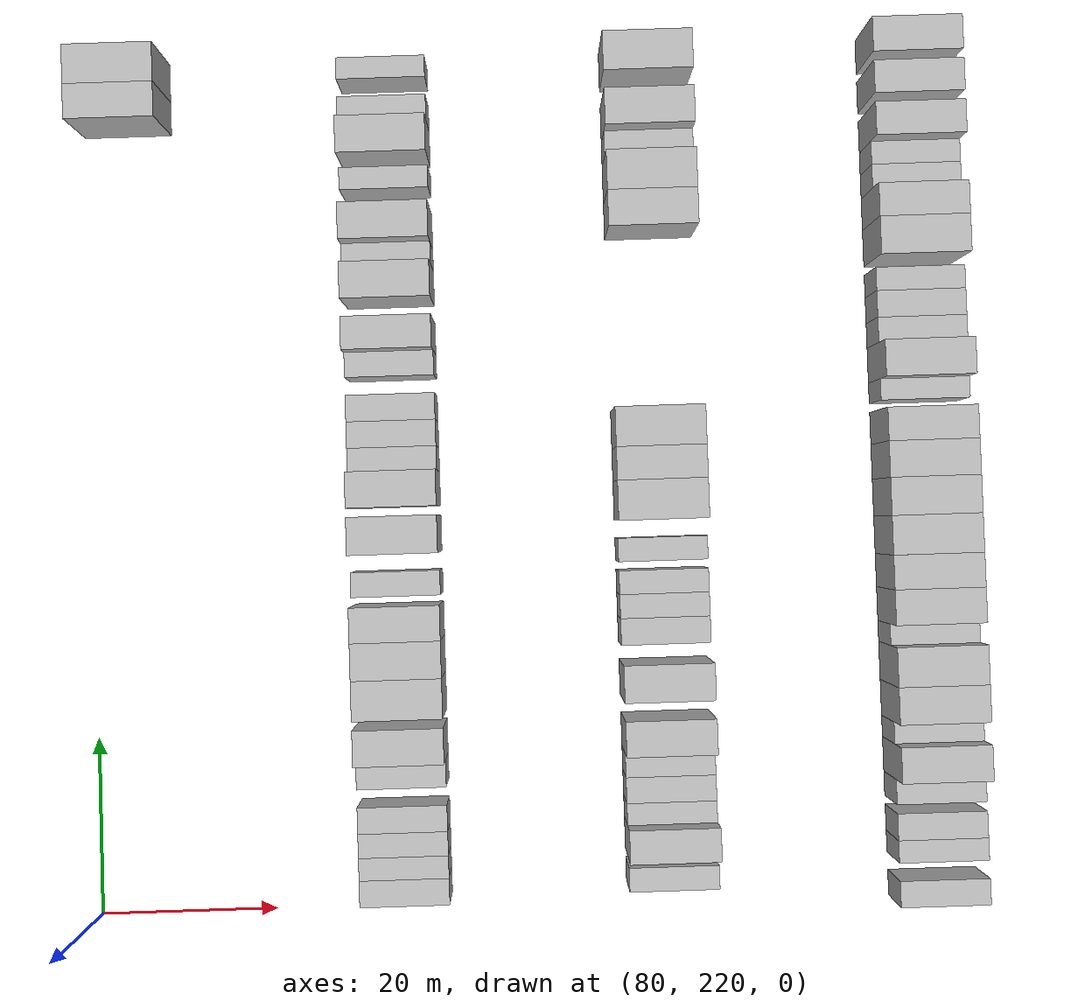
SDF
<sdf version="1.6">
 <world name="default">
  <model name="building_641">
   <static>1</static>
   <pose>85.0000 311.5146 0 0.000000 0.000000 0.000000</pose>
   <link name="link">
    <pose>0 0 4.50 0 0 0</pose>
    <collision name="collision"><geometry><box><size>10.0000 3.9091 9.0000</size></box></geometry></collision>
    <visual name="visual">
     <cast_shadows>0</cast_shadows>
     <geometry><box><size>10.0000 3.9091 9.0000</size></box></geometry>
     <material>
      <script>
       <uri>model://HANNAS_wall/materials/scripts</uri>
       <uri>model://HANNAS_wall/materials/textures</uri>
       <name>vrc/HANNAS_wall</name>
      </script>
     </material>
    </visual>
   </link>
  </model>
  <model name="building_642">
   <static>1</static>
   <pose>85.0000 315.6790 0 0.000000 0.000000 0.000000</pose>
   <link name="link">
    <pose>0 0 4.50 0 0 0</pose>
    <collision name="collision"><geometry><box><size>10.0000 4.4197 9.0000</size></box></geometry></collision>
    <visual name="visual">
     <cast_shadows>0</cast_shadows>
     <geometry><box><size>10.0000 4.4197 9.0000</size></box></geometry>
     <material>
      <script>
       <uri>model://HANNAS_wall/materials/scripts</uri>
       <uri>model://HANNAS_wall/materials/textures</uri>
       <name>vrc/HANNAS_wall</name>
      </script>
     </material>
    </visual>
   </link>
  </model>
  <model name="building_846">
   <static>1</static>
   <pose>115.0000 222.6279 0 0.000000 0.000000 0.000000</pose>
   <link name="link">
    <pose>0 0 3.00 0 0 0</pose>
    <collision name="collision"><geometry><box><size>10.0000 2.9274 6.0000</size></box></geometry></collision>
    <visual name="visual">
     <cast_shadows>0</cast_shadows>
     <geometry><box><size>10.0000 2.9274 6.0000</size></box></geometry>
     <material>
      <script>
       <uri>model://HANNAS_wall/materials/scripts</uri>
       <uri>model://HANNAS_wall/materials/textures</uri>
       <name>vrc/HANNAS_wall</name>
      </script>
     </material>
    </visual>
   </link>
  </model>
  <model name="building_847">
   <static>1</static>
   <pose>115.0000 225.3380 0 0.000000 0.000000 0.000000</pose>
   <link name="link">
    <pose>0 0 3.00 0 0 0</pose>
    <collision name="collision"><geometry><box><size>10.0000 2.4930 6.0000</size></box></geometry></collision>
    <visual name="visual">
     <cast_shadows>0</cast_shadows>
     <geometry><box><size>10.0000 2.4930 6.0000</size></box></geometry>
     <material>
      <script>
       <uri>model://HANNAS_wall/materials/scripts</uri>
       <uri>model://HANNAS_wall/materials/textures</uri>
       <name>vrc/HANNAS_wall</name>
      </script>
     </material>
    </visual>
   </link>
  </model>
  <model name="building_848">
   <static>1</static>
   <pose>115.0000 227.9159 0 0.000000 0.000000 0.000000</pose>
   <link name="link">
    <pose>0 0 3.00 0 0 0</pose>
    <collision name="collision"><geometry><box><size>10.0000 2.6627 6.0000</size></box></geometry></collision>
    <visual name="visual">
     <cast_shadows>0</cast_shadows>
     <geometry><box><size>10.0000 2.6627 6.0000</size></box></geometry>
     <material>
      <script>
       <uri>model://HANNAS_wall/materials/scripts</uri>
       <uri>model://HANNAS_wall/materials/textures</uri>
       <name>vrc/HANNAS_wall</name>
      </script>
     </material>
    </visual>
   </link>
  </model>
  <model name="building_849">
   <static>1</static>
   <pose>115.0000 230.7033 0 0.000000 0.000000 0.000000</pose>
   <link name="link">
    <pose>0 0 3.00 0 0 0</pose>
    <collision name="collision"><geometry><box><size>10.0000 2.9122 6.0000</size></box></geometry></collision>
    <visual name="visual">
     <cast_shadows>0</cast_shadows>
     <geometry><box><size>10.0000 2.9122 6.0000</size></box></geometry>
     <material>
      <script>
       <uri>model://HANNAS_wall/materials/scripts</uri>
       <uri>model://HANNAS_wall/materials/textures</uri>
       <name>vrc/HANNAS_wall</name>
      </script>
     </material>
    </visual>
   </link>
  </model>
  <model name="building_850">
   <static>1</static>
   <pose>115.0000 235.6266 0 0.000000 0.000000 0.000000</pose>
   <link name="link">
    <pose>0 0 3.00 0 0 0</pose>
    <collision name="collision"><geometry><box><size>10.0000 2.9344 6.0000</size></box></geometry></collision>
    <visual name="visual">
     <cast_shadows>0</cast_shadows>
     <geometry><box><size>10.0000 2.9344 6.0000</size></box></geometry>
     <material>
      <script>
       <uri>model://HANNAS_wall/materials/scripts</uri>
       <uri>model://HANNAS_wall/materials/textures</uri>
       <name>vrc/HANNAS_wall</name>
      </script>
     </material>
    </visual>
   </link>
  </model>
  <model name="building_851">
   <static>1</static>
   <pose>115.0000 239.0777 0 0.000000 0.000000 0.000000</pose>
   <link name="link">
    <pose>0 0 4.50 0 0 0</pose>
    <collision name="collision"><geometry><box><size>10.0000 3.9678 9.0000</size></box></geometry></collision>
    <visual name="visual">
     <cast_shadows>0</cast_shadows>
     <geometry><box><size>10.0000 3.9678 9.0000</size></box></geometry>
     <material>
      <script>
       <uri>model://HANNAS_wall/materials/scripts</uri>
       <uri>model://HANNAS_wall/materials/textures</uri>
       <name>vrc/HANNAS_wall</name>
      </script>
     </material>
    </visual>
   </link>
  </model>
  <model name="building_852">
   <static>1</static>
   <pose>115.0000 244.2660 0 0.000000 0.000000 0.000000</pose>
   <link name="link">
    <pose>0 0 4.50 0 0 0</pose>
    <collision name="collision"><geometry><box><size>10.0000 4.4089 9.0000</size></box></geometry></collision>
    <visual name="visual">
     <cast_shadows>0</cast_shadows>
     <geometry><box><size>10.0000 4.4089 9.0000</size></box></geometry>
     <material>
      <script>
       <uri>model://HANNAS_wall/materials/scripts</uri>
       <uri>model://HANNAS_wall/materials/textures</uri>
       <name>vrc/HANNAS_wall</name>
      </script>
     </material>
    </visual>
   </link>
  </model>
  <model name="building_853">
   <static>1</static>
   <pose>115.0000 248.5259 0 0.000000 0.000000 0.000000</pose>
   <link name="link">
    <pose>0 0 4.50 0 0 0</pose>
    <collision name="collision"><geometry><box><size>10.0000 4.1110 9.0000</size></box></geometry></collision>
    <visual name="visual">
     <cast_shadows>0</cast_shadows>
     <geometry><box><size>10.0000 4.1110 9.0000</size></box></geometry>
     <material>
      <script>
       <uri>model://HANNAS_wall/materials/scripts</uri>
       <uri>model://HANNAS_wall/materials/textures</uri>
       <name>vrc/HANNAS_wall</name>
      </script>
     </material>
    </visual>
   </link>
  </model>
  <model name="building_854">
   <static>1</static>
   <pose>115.0000 252.5371 0 0.000000 0.000000 0.000000</pose>
   <link name="link">
    <pose>0 0 4.50 0 0 0</pose>
    <collision name="collision"><geometry><box><size>10.0000 3.9114 9.0000</size></box></geometry></collision>
    <visual name="visual">
     <cast_shadows>0</cast_shadows>
     <geometry><box><size>10.0000 3.9114 9.0000</size></box></geometry>
     <material>
      <script>
       <uri>model://HANNAS_wall/materials/scripts</uri>
       <uri>model://HANNAS_wall/materials/textures</uri>
       <name>vrc/HANNAS_wall</name>
      </script>
     </material>
    </visual>
   </link>
  </model>
  <model name="building_855">
   <static>1</static>
   <pose>115.0000 256.8716 0 0.000000 0.000000 0.000000</pose>
   <link name="link">
    <pose>0 0 3.00 0 0 0</pose>
    <collision name="collision"><geometry><box><size>10.0000 2.7575 6.0000</size></box></geometry></collision>
    <visual name="visual">
     <cast_shadows>0</cast_shadows>
     <geometry><box><size>10.0000 2.7575 6.0000</size></box></geometry>
     <material>
      <script>
       <uri>model://HANNAS_wall/materials/scripts</uri>
       <uri>model://HANNAS_wall/materials/textures</uri>
       <name>vrc/HANNAS_wall</name>
      </script>
     </material>
    </visual>
   </link>
  </model>
  <model name="building_856">
   <static>1</static>
   <pose>115.0000 262.3448 0 0.000000 0.000000 0.000000</pose>
   <link name="link">
    <pose>0 0 4.50 0 0 0</pose>
    <collision name="collision"><geometry><box><size>10.0000 4.1890 9.0000</size></box></geometry></collision>
    <visual name="visual">
     <cast_shadows>0</cast_shadows>
     <geometry><box><size>10.0000 4.1890 9.0000</size></box></geometry>
     <material>
      <script>
       <uri>model://HANNAS_wall/materials/scripts</uri>
       <uri>model://HANNAS_wall/materials/textures</uri>
       <name>vrc/HANNAS_wall</name>
      </script>
     </material>
    </visual>
   </link>
  </model>
  <model name="building_857">
   <static>1</static>
   <pose>115.0000 267.4469 0 0.000000 0.000000 0.000000</pose>
   <link name="link">
    <pose>0 0 4.50 0 0 0</pose>
    <collision name="collision"><geometry><box><size>10.0000 4.0153 9.0000</size></box></geometry></collision>
    <visual name="visual">
     <cast_shadows>0</cast_shadows>
     <geometry><box><size>10.0000 4.0153 9.0000</size></box></geometry>
     <material>
      <script>
       <uri>model://HANNAS_wall/materials/scripts</uri>
       <uri>model://HANNAS_wall/materials/textures</uri>
       <name>vrc/HANNAS_wall</name>
      </script>
     </material>
    </visual>
   </link>
  </model>
  <model name="building_858">
   <static>1</static>
   <pose>115.0000 270.8145 0 0.000000 0.000000 0.000000</pose>
   <link name="link">
    <pose>0 0 3.00 0 0 0</pose>
    <collision name="collision"><geometry><box><size>10.0000 2.7198 6.0000</size></box></geometry></collision>
    <visual name="visual">
     <cast_shadows>0</cast_shadows>
     <geometry><box><size>10.0000 2.7198 6.0000</size></box></geometry>
     <material>
      <script>
       <uri>model://HANNAS_wall/materials/scripts</uri>
       <uri>model://HANNAS_wall/materials/textures</uri>
       <name>vrc/HANNAS_wall</name>
      </script>
     </material>
    </visual>
   </link>
  </model>
  <model name="building_859">
   <static>1</static>
   <pose>115.0000 273.6566 0 0.000000 0.000000 0.000000</pose>
   <link name="link">
    <pose>0 0 3.00 0 0 0</pose>
    <collision name="collision"><geometry><box><size>10.0000 2.9644 6.0000</size></box></geometry></collision>
    <visual name="visual">
     <cast_shadows>0</cast_shadows>
     <geometry><box><size>10.0000 2.9644 6.0000</size></box></geometry>
     <material>
      <script>
       <uri>model://HANNAS_wall/materials/scripts</uri>
       <uri>model://HANNAS_wall/materials/textures</uri>
       <name>vrc/HANNAS_wall</name>
      </script>
     </material>
    </visual>
   </link>
  </model>
  <model name="building_860">
   <static>1</static>
   <pose>115.0000 276.6313 0 0.000000 0.000000 0.000000</pose>
   <link name="link">
    <pose>0 0 3.00 0 0 0</pose>
    <collision name="collision"><geometry><box><size>10.0000 2.9850 6.0000</size></box></geometry></collision>
    <visual name="visual">
     <cast_shadows>0</cast_shadows>
     <geometry><box><size>10.0000 2.9850 6.0000</size></box></geometry>
     <material>
      <script>
       <uri>model://HANNAS_wall/materials/scripts</uri>
       <uri>model://HANNAS_wall/materials/textures</uri>
       <name>vrc/HANNAS_wall</name>
      </script>
     </material>
    </visual>
   </link>
  </model>
  <model name="building_861">
   <static>1</static>
   <pose>115.0000 281.5331 0 0.000000 0.000000 0.000000</pose>
   <link name="link">
    <pose>0 0 3.00 0 0 0</pose>
    <collision name="collision"><geometry><box><size>10.0000 2.8186 6.0000</size></box></geometry></collision>
    <visual name="visual">
     <cast_shadows>0</cast_shadows>
     <geometry><box><size>10.0000 2.8186 6.0000</size></box></geometry>
     <material>
      <script>
       <uri>model://HANNAS_wall/materials/scripts</uri>
       <uri>model://HANNAS_wall/materials/textures</uri>
       <name>vrc/HANNAS_wall</name>
      </script>
     </material>
    </visual>
   </link>
  </model>
  <model name="building_862">
   <static>1</static>
   <pose>115.0000 284.7804 0 0.000000 0.000000 0.000000</pose>
   <link name="link">
    <pose>0 0 4.50 0 0 0</pose>
    <collision name="collision"><geometry><box><size>10.0000 3.6760 9.0000</size></box></geometry></collision>
    <visual name="visual">
     <cast_shadows>0</cast_shadows>
     <geometry><box><size>10.0000 3.6760 9.0000</size></box></geometry>
     <material>
      <script>
       <uri>model://HANNAS_wall/materials/scripts</uri>
       <uri>model://HANNAS_wall/materials/textures</uri>
       <name>vrc/HANNAS_wall</name>
      </script>
     </material>
    </visual>
   </link>
  </model>
  <model name="building_863">
   <static>1</static>
   <pose>115.0000 290.6549 0 0.000000 0.000000 0.000000</pose>
   <link name="link">
    <pose>0 0 4.50 0 0 0</pose>
    <collision name="collision"><geometry><box><size>10.0000 4.0729 9.0000</size></box></geometry></collision>
    <visual name="visual">
     <cast_shadows>0</cast_shadows>
     <geometry><box><size>10.0000 4.0729 9.0000</size></box></geometry>
     <material>
      <script>
       <uri>model://HANNAS_wall/materials/scripts</uri>
       <uri>model://HANNAS_wall/materials/textures</uri>
       <name>vrc/HANNAS_wall</name>
      </script>
     </material>
    </visual>
   </link>
  </model>
  <model name="building_864">
   <static>1</static>
   <pose>115.0000 293.9522 0 0.000000 0.000000 0.000000</pose>
   <link name="link">
    <pose>0 0 3.00 0 0 0</pose>
    <collision name="collision"><geometry><box><size>10.0000 2.5218 6.0000</size></box></geometry></collision>
    <visual name="visual">
     <cast_shadows>0</cast_shadows>
     <geometry><box><size>10.0000 2.5218 6.0000</size></box></geometry>
     <material>
      <script>
       <uri>model://HANNAS_wall/materials/scripts</uri>
       <uri>model://HANNAS_wall/materials/textures</uri>
       <name>vrc/HANNAS_wall</name>
      </script>
     </material>
    </visual>
   </link>
  </model>
  <model name="building_865">
   <static>1</static>
   <pose>115.0000 297.2625 0 0.000000 0.000000 0.000000</pose>
   <link name="link">
    <pose>0 0 4.50 0 0 0</pose>
    <collision name="collision"><geometry><box><size>10.0000 4.0987 9.0000</size></box></geometry></collision>
    <visual name="visual">
     <cast_shadows>0</cast_shadows>
     <geometry><box><size>10.0000 4.0987 9.0000</size></box></geometry>
     <material>
      <script>
       <uri>model://HANNAS_wall/materials/scripts</uri>
       <uri>model://HANNAS_wall/materials/textures</uri>
       <name>vrc/HANNAS_wall</name>
      </script>
     </material>
    </visual>
   </link>
  </model>
  <model name="building_866">
   <static>1</static>
   <pose>115.0000 302.5664 0 0.000000 0.000000 0.000000</pose>
   <link name="link">
    <pose>0 0 3.00 0 0 0</pose>
    <collision name="collision"><geometry><box><size>10.0000 2.5090 6.0000</size></box></geometry></collision>
    <visual name="visual">
     <cast_shadows>0</cast_shadows>
     <geometry><box><size>10.0000 2.5090 6.0000</size></box></geometry>
     <material>
      <script>
       <uri>model://HANNAS_wall/materials/scripts</uri>
       <uri>model://HANNAS_wall/materials/textures</uri>
       <name>vrc/HANNAS_wall</name>
      </script>
     </material>
    </visual>
   </link>
  </model>
  <model name="building_867">
   <static>1</static>
   <pose>115.0000 306.8798 0 0.000000 0.000000 0.000000</pose>
   <link name="link">
    <pose>0 0 4.50 0 0 0</pose>
    <collision name="collision"><geometry><box><size>10.0000 4.1178 9.0000</size></box></geometry></collision>
    <visual name="visual">
     <cast_shadows>0</cast_shadows>
     <geometry><box><size>10.0000 4.1178 9.0000</size></box></geometry>
     <material>
      <script>
       <uri>model://HANNAS_wall/materials/scripts</uri>
       <uri>model://HANNAS_wall/materials/textures</uri>
       <name>vrc/HANNAS_wall</name>
      </script>
     </material>
    </visual>
   </link>
  </model>
  <model name="building_868">
   <static>1</static>
   <pose>115.0000 310.3991 0 0.000000 0.000000 0.000000</pose>
   <link name="link">
    <pose>0 0 3.00 0 0 0</pose>
    <collision name="collision"><geometry><box><size>10.0000 2.9208 6.0000</size></box></geometry></collision>
    <visual name="visual">
     <cast_shadows>0</cast_shadows>
     <geometry><box><size>10.0000 2.9208 6.0000</size></box></geometry>
     <material>
      <script>
       <uri>model://HANNAS_wall/materials/scripts</uri>
       <uri>model://HANNAS_wall/materials/textures</uri>
       <name>vrc/HANNAS_wall</name>
      </script>
     </material>
    </visual>
   </link>
  </model>
  <model name="building_869">
   <static>1</static>
   <pose>115.0000 315.0721 0 0.000000 0.000000 0.000000</pose>
   <link name="link">
    <pose>0 0 3.00 0 0 0</pose>
    <collision name="collision"><geometry><box><size>10.0000 2.4251 6.0000</size></box></geometry></collision>
    <visual name="visual">
     <cast_shadows>0</cast_shadows>
     <geometry><box><size>10.0000 2.4251 6.0000</size></box></geometry>
     <material>
      <script>
       <uri>model://HANNAS_wall/materials/scripts</uri>
       <uri>model://HANNAS_wall/materials/textures</uri>
       <name>vrc/HANNAS_wall</name>
      </script>
     </material>
    </visual>
   </link>
  </model>
  <model name="building_1079">
   <static>1</static>
   <pose>145.0000 223.2308 0 0.000000 0.000000 0.000000</pose>
   <link name="link">
    <pose>0 0 3.00 0 0 0</pose>
    <collision name="collision"><geometry><box><size>10.0000 2.6376 6.0000</size></box></geometry></collision>
    <visual name="visual">
     <cast_shadows>0</cast_shadows>
     <geometry><box><size>10.0000 2.6376 6.0000</size></box></geometry>
     <material>
      <script>
       <uri>model://HANNAS_wall/materials/scripts</uri>
       <uri>model://HANNAS_wall/materials/textures</uri>
       <name>vrc/HANNAS_wall</name>
      </script>
     </material>
    </visual>
   </link>
  </model>
  <model name="building_1080">
   <static>1</static>
   <pose>145.0000 227.4013 0 0.000000 0.000000 0.000000</pose>
   <link name="link">
    <pose>0 0 4.50 0 0 0</pose>
    <collision name="collision"><geometry><box><size>10.0000 3.7033 9.0000</size></box></geometry></collision>
    <visual name="visual">
     <cast_shadows>0</cast_shadows>
     <geometry><box><size>10.0000 3.7033 9.0000</size></box></geometry>
     <material>
      <script>
       <uri>model://HANNAS_wall/materials/scripts</uri>
       <uri>model://HANNAS_wall/materials/textures</uri>
       <name>vrc/HANNAS_wall</name>
      </script>
     </material>
    </visual>
   </link>
  </model>
  <model name="building_1081">
   <static>1</static>
   <pose>145.0000 230.4632 0 0.000000 0.000000 0.000000</pose>
   <link name="link">
    <pose>0 0 3.00 0 0 0</pose>
    <collision name="collision"><geometry><box><size>10.0000 2.4206 6.0000</size></box></geometry></collision>
    <visual name="visual">
     <cast_shadows>0</cast_shadows>
     <geometry><box><size>10.0000 2.4206 6.0000</size></box></geometry>
     <material>
      <script>
       <uri>model://HANNAS_wall/materials/scripts</uri>
       <uri>model://HANNAS_wall/materials/textures</uri>
       <name>vrc/HANNAS_wall</name>
      </script>
     </material>
    </visual>
   </link>
  </model>
  <model name="building_1082">
   <static>1</static>
   <pose>145.0000 233.1024 0 0.000000 0.000000 0.000000</pose>
   <link name="link">
    <pose>0 0 3.00 0 0 0</pose>
    <collision name="collision"><geometry><box><size>10.0000 2.8579 6.0000</size></box></geometry></collision>
    <visual name="visual">
     <cast_shadows>0</cast_shadows>
     <geometry><box><size>10.0000 2.8579 6.0000</size></box></geometry>
     <material>
      <script>
       <uri>model://HANNAS_wall/materials/scripts</uri>
       <uri>model://HANNAS_wall/materials/textures</uri>
       <name>vrc/HANNAS_wall</name>
      </script>
     </material>
    </visual>
   </link>
  </model>
  <model name="building_1083">
   <static>1</static>
   <pose>145.0000 235.8567 0 0.000000 0.000000 0.000000</pose>
   <link name="link">
    <pose>0 0 3.00 0 0 0</pose>
    <collision name="collision"><geometry><box><size>10.0000 2.6506 6.0000</size></box></geometry></collision>
    <visual name="visual">
     <cast_shadows>0</cast_shadows>
     <geometry><box><size>10.0000 2.6506 6.0000</size></box></geometry>
     <material>
      <script>
       <uri>model://HANNAS_wall/materials/scripts</uri>
       <uri>model://HANNAS_wall/materials/textures</uri>
       <name>vrc/HANNAS_wall</name>
      </script>
     </material>
    </visual>
   </link>
  </model>
  <model name="building_1084">
   <static>1</static>
   <pose>145.0000 239.1405 0 0.000000 0.000000 0.000000</pose>
   <link name="link">
    <pose>0 0 4.50 0 0 0</pose>
    <collision name="collision"><geometry><box><size>10.0000 3.9171 9.0000</size></box></geometry></collision>
    <visual name="visual">
     <cast_shadows>0</cast_shadows>
     <geometry><box><size>10.0000 3.9171 9.0000</size></box></geometry>
     <material>
      <script>
       <uri>model://HANNAS_wall/materials/scripts</uri>
       <uri>model://HANNAS_wall/materials/textures</uri>
       <name>vrc/HANNAS_wall</name>
      </script>
     </material>
    </visual>
   </link>
  </model>
  <model name="building_1085">
   <static>1</static>
   <pose>145.0000 245.1516 0 0.000000 0.000000 0.000000</pose>
   <link name="link">
    <pose>0 0 4.50 0 0 0</pose>
    <collision name="collision"><geometry><box><size>10.0000 4.1051 9.0000</size></box></geometry></collision>
    <visual name="visual">
     <cast_shadows>0</cast_shadows>
     <geometry><box><size>10.0000 4.1051 9.0000</size></box></geometry>
     <material>
      <script>
       <uri>model://HANNAS_wall/materials/scripts</uri>
       <uri>model://HANNAS_wall/materials/textures</uri>
       <name>vrc/HANNAS_wall</name>
      </script>
     </material>
    </visual>
   </link>
  </model>
  <model name="building_1086">
   <static>1</static>
   <pose>145.0000 250.6887 0 0.000000 0.000000 0.000000</pose>
   <link name="link">
    <pose>0 0 3.00 0 0 0</pose>
    <collision name="collision"><geometry><box><size>10.0000 2.9691 6.0000</size></box></geometry></collision>
    <visual name="visual">
     <cast_shadows>0</cast_shadows>
     <geometry><box><size>10.0000 2.9691 6.0000</size></box></geometry>
     <material>
      <script>
       <uri>model://HANNAS_wall/materials/scripts</uri>
       <uri>model://HANNAS_wall/materials/textures</uri>
       <name>vrc/HANNAS_wall</name>
      </script>
     </material>
    </visual>
   </link>
  </model>
  <model name="building_1087">
   <static>1</static>
   <pose>145.0000 253.5144 0 0.000000 0.000000 0.000000</pose>
   <link name="link">
    <pose>0 0 3.00 0 0 0</pose>
    <collision name="collision"><geometry><box><size>10.0000 2.6823 6.0000</size></box></geometry></collision>
    <visual name="visual">
     <cast_shadows>0</cast_shadows>
     <geometry><box><size>10.0000 2.6823 6.0000</size></box></geometry>
     <material>
      <script>
       <uri>model://HANNAS_wall/materials/scripts</uri>
       <uri>model://HANNAS_wall/materials/textures</uri>
       <name>vrc/HANNAS_wall</name>
      </script>
     </material>
    </visual>
   </link>
  </model>
  <model name="building_1088">
   <static>1</static>
   <pose>145.0000 256.1852 0 0.000000 0.000000 0.000000</pose>
   <link name="link">
    <pose>0 0 3.00 0 0 0</pose>
    <collision name="collision"><geometry><box><size>10.0000 2.6594 6.0000</size></box></geometry></collision>
    <visual name="visual">
     <cast_shadows>0</cast_shadows>
     <geometry><box><size>10.0000 2.6594 6.0000</size></box></geometry>
     <material>
      <script>
       <uri>model://HANNAS_wall/materials/scripts</uri>
       <uri>model://HANNAS_wall/materials/textures</uri>
       <name>vrc/HANNAS_wall</name>
      </script>
     </material>
    </visual>
   </link>
  </model>
  <model name="building_1089">
   <static>1</static>
   <pose>145.0000 259.8250 0 0.000000 0.000000 0.000000</pose>
   <link name="link">
    <pose>0 0 3.00 0 0 0</pose>
    <collision name="collision"><geometry><box><size>10.0000 2.6201 6.0000</size></box></geometry></collision>
    <visual name="visual">
     <cast_shadows>0</cast_shadows>
     <geometry><box><size>10.0000 2.6201 6.0000</size></box></geometry>
     <material>
      <script>
       <uri>model://HANNAS_wall/materials/scripts</uri>
       <uri>model://HANNAS_wall/materials/textures</uri>
       <name>vrc/HANNAS_wall</name>
      </script>
     </material>
    </visual>
   </link>
  </model>
  <model name="building_1090">
   <static>1</static>
   <pose>145.0000 265.3534 0 0.000000 0.000000 0.000000</pose>
   <link name="link">
    <pose>0 0 4.50 0 0 0</pose>
    <collision name="collision"><geometry><box><size>10.0000 4.4367 9.0000</size></box></geometry></collision>
    <visual name="visual">
     <cast_shadows>0</cast_shadows>
     <geometry><box><size>10.0000 4.4367 9.0000</size></box></geometry>
     <material>
      <script>
       <uri>model://HANNAS_wall/materials/scripts</uri>
       <uri>model://HANNAS_wall/materials/textures</uri>
       <name>vrc/HANNAS_wall</name>
      </script>
     </material>
    </visual>
   </link>
  </model>
  <model name="building_1091">
   <static>1</static>
   <pose>145.0000 269.4172 0 0.000000 0.000000 0.000000</pose>
   <link name="link">
    <pose>0 0 4.50 0 0 0</pose>
    <collision name="collision"><geometry><box><size>10.0000 3.6910 9.0000</size></box></geometry></collision>
    <visual name="visual">
     <cast_shadows>0</cast_shadows>
     <geometry><box><size>10.0000 3.6910 9.0000</size></box></geometry>
     <material>
      <script>
       <uri>model://HANNAS_wall/materials/scripts</uri>
       <uri>model://HANNAS_wall/materials/textures</uri>
       <name>vrc/HANNAS_wall</name>
      </script>
     </material>
    </visual>
   </link>
  </model>
  <model name="building_1092">
   <static>1</static>
   <pose>145.0000 273.4667 0 0.000000 0.000000 0.000000</pose>
   <link name="link">
    <pose>0 0 4.50 0 0 0</pose>
    <collision name="collision"><geometry><box><size>10.0000 4.4080 9.0000</size></box></geometry></collision>
    <visual name="visual">
     <cast_shadows>0</cast_shadows>
     <geometry><box><size>10.0000 4.4080 9.0000</size></box></geometry>
     <material>
      <script>
       <uri>model://HANNAS_wall/materials/scripts</uri>
       <uri>model://HANNAS_wall/materials/textures</uri>
       <name>vrc/HANNAS_wall</name>
      </script>
     </material>
    </visual>
   </link>
  </model>
  <model name="building_1093">
   <static>1</static>
   <pose>145.0000 297.7119 0 0.000000 0.000000 0.000000</pose>
   <link name="link">
    <pose>0 0 4.50 0 0 0</pose>
    <collision name="collision"><geometry><box><size>10.0000 4.0275 9.0000</size></box></geometry></collision>
    <visual name="visual">
     <cast_shadows>0</cast_shadows>
     <geometry><box><size>10.0000 4.0275 9.0000</size></box></geometry>
     <material>
      <script>
       <uri>model://HANNAS_wall/materials/scripts</uri>
       <uri>model://HANNAS_wall/materials/textures</uri>
       <name>vrc/HANNAS_wall</name>
      </script>
     </material>
    </visual>
   </link>
  </model>
  <model name="building_1094">
   <static>1</static>
   <pose>145.0000 301.9622 0 0.000000 0.000000 0.000000</pose>
   <link name="link">
    <pose>0 0 4.50 0 0 0</pose>
    <collision name="collision"><geometry><box><size>10.0000 4.4731 9.0000</size></box></geometry></collision>
    <visual name="visual">
     <cast_shadows>0</cast_shadows>
     <geometry><box><size>10.0000 4.4731 9.0000</size></box></geometry>
     <material>
      <script>
       <uri>model://HANNAS_wall/materials/scripts</uri>
       <uri>model://HANNAS_wall/materials/textures</uri>
       <name>vrc/HANNAS_wall</name>
      </script>
     </material>
    </visual>
   </link>
  </model>
  <model name="building_1095">
   <static>1</static>
   <pose>145.0000 305.6040 0 0.000000 0.000000 0.000000</pose>
   <link name="link">
    <pose>0 0 3.00 0 0 0</pose>
    <collision name="collision"><geometry><box><size>10.0000 2.8105 6.0000</size></box></geometry></collision>
    <visual name="visual">
     <cast_shadows>0</cast_shadows>
     <geometry><box><size>10.0000 2.8105 6.0000</size></box></geometry>
     <material>
      <script>
       <uri>model://HANNAS_wall/materials/scripts</uri>
       <uri>model://HANNAS_wall/materials/textures</uri>
       <name>vrc/HANNAS_wall</name>
      </script>
     </material>
    </visual>
   </link>
  </model>
  <model name="building_1096">
   <static>1</static>
   <pose>145.0000 309.0445 0 0.000000 0.000000 0.000000</pose>
   <link name="link">
    <pose>0 0 4.50 0 0 0</pose>
    <collision name="collision"><geometry><box><size>10.0000 4.0705 9.0000</size></box></geometry></collision>
    <visual name="visual">
     <cast_shadows>0</cast_shadows>
     <geometry><box><size>10.0000 4.0705 9.0000</size></box></geometry>
     <material>
      <script>
       <uri>model://HANNAS_wall/materials/scripts</uri>
       <uri>model://HANNAS_wall/materials/textures</uri>
       <name>vrc/HANNAS_wall</name>
      </script>
     </material>
    </visual>
   </link>
  </model>
  <model name="building_1097">
   <static>1</static>
   <pose>145.0000 315.2636 0 0.000000 0.000000 0.000000</pose>
   <link name="link">
    <pose>0 0 4.50 0 0 0</pose>
    <collision name="collision"><geometry><box><size>10.0000 4.3677 9.0000</size></box></geometry></collision>
    <visual name="visual">
     <cast_shadows>0</cast_shadows>
     <geometry><box><size>10.0000 4.3677 9.0000</size></box></geometry>
     <material>
      <script>
       <uri>model://HANNAS_wall/materials/scripts</uri>
       <uri>model://HANNAS_wall/materials/textures</uri>
       <name>vrc/HANNAS_wall</name>
      </script>
     </material>
    </visual>
   </link>
  </model>
  <model name="building_1309">
   <static>1</static>
   <pose>175.0000 220.6714 0 0.000000 0.000000 0.000000</pose>
   <link name="link">
    <pose>0 0 3.00 0 0 0</pose>
    <collision name="collision"><geometry><box><size>10.0000 2.9078 6.0000</size></box></geometry></collision>
    <visual name="visual">
     <cast_shadows>0</cast_shadows>
     <geometry><box><size>10.0000 2.9078 6.0000</size></box></geometry>
     <material>
      <script>
       <uri>model://HANNAS_wall/materials/scripts</uri>
       <uri>model://HANNAS_wall/materials/textures</uri>
       <name>vrc/HANNAS_wall</name>
      </script>
     </material>
    </visual>
   </link>
  </model>
  <model name="building_1310">
   <static>1</static>
   <pose>175.0000 225.3603 0 0.000000 0.000000 0.000000</pose>
   <link name="link">
    <pose>0 0 3.00 0 0 0</pose>
    <collision name="collision"><geometry><box><size>10.0000 2.4701 6.0000</size></box></geometry></collision>
    <visual name="visual">
     <cast_shadows>0</cast_shadows>
     <geometry><box><size>10.0000 2.4701 6.0000</size></box></geometry>
     <material>
      <script>
       <uri>model://HANNAS_wall/materials/scripts</uri>
       <uri>model://HANNAS_wall/materials/textures</uri>
       <name>vrc/HANNAS_wall</name>
      </script>
     </material>
    </visual>
   </link>
  </model>
  <model name="building_1311">
   <static>1</static>
   <pose>175.0000 228.0824 0 0.000000 0.000000 0.000000</pose>
   <link name="link">
    <pose>0 0 3.00 0 0 0</pose>
    <collision name="collision"><geometry><box><size>10.0000 2.9741 6.0000</size></box></geometry></collision>
    <visual name="visual">
     <cast_shadows>0</cast_shadows>
     <geometry><box><size>10.0000 2.9741 6.0000</size></box></geometry>
     <material>
      <script>
       <uri>model://HANNAS_wall/materials/scripts</uri>
       <uri>model://HANNAS_wall/materials/textures</uri>
       <name>vrc/HANNAS_wall</name>
      </script>
     </material>
    </visual>
   </link>
  </model>
  <model name="building_1312">
   <static>1</static>
   <pose>175.0000 231.9654 0 0.000000 0.000000 0.000000</pose>
   <link name="link">
    <pose>0 0 3.00 0 0 0</pose>
    <collision name="collision"><geometry><box><size>10.0000 2.7919 6.0000</size></box></geometry></collision>
    <visual name="visual">
     <cast_shadows>0</cast_shadows>
     <geometry><box><size>10.0000 2.7919 6.0000</size></box></geometry>
     <material>
      <script>
       <uri>model://HANNAS_wall/materials/scripts</uri>
       <uri>model://HANNAS_wall/materials/textures</uri>
       <name>vrc/HANNAS_wall</name>
      </script>
     </material>
    </visual>
   </link>
  </model>
  <model name="building_1313">
   <static>1</static>
   <pose>175.0000 235.3355 0 0.000000 0.000000 0.000000</pose>
   <link name="link">
    <pose>0 0 4.50 0 0 0</pose>
    <collision name="collision"><geometry><box><size>10.0000 3.9484 9.0000</size></box></geometry></collision>
    <visual name="visual">
     <cast_shadows>0</cast_shadows>
     <geometry><box><size>10.0000 3.9484 9.0000</size></box></geometry>
     <material>
      <script>
       <uri>model://HANNAS_wall/materials/scripts</uri>
       <uri>model://HANNAS_wall/materials/textures</uri>
       <name>vrc/HANNAS_wall</name>
      </script>
     </material>
    </visual>
   </link>
  </model>
  <model name="building_1314">
   <static>1</static>
   <pose>175.0000 238.5296 0 0.000000 0.000000 0.000000</pose>
   <link name="link">
    <pose>0 0 3.00 0 0 0</pose>
    <collision name="collision"><geometry><box><size>10.0000 2.4398 6.0000</size></box></geometry></collision>
    <visual name="visual">
     <cast_shadows>0</cast_shadows>
     <geometry><box><size>10.0000 2.4398 6.0000</size></box></geometry>
     <material>
      <script>
       <uri>model://HANNAS_wall/materials/scripts</uri>
       <uri>model://HANNAS_wall/materials/textures</uri>
       <name>vrc/HANNAS_wall</name>
      </script>
     </material>
    </visual>
   </link>
  </model>
  <model name="building_1315">
   <static>1</static>
   <pose>175.0000 241.7986 0 0.000000 0.000000 0.000000</pose>
   <link name="link">
    <pose>0 0 4.50 0 0 0</pose>
    <collision name="collision"><geometry><box><size>10.0000 4.0981 9.0000</size></box></geometry></collision>
    <visual name="visual">
     <cast_shadows>0</cast_shadows>
     <geometry><box><size>10.0000 4.0981 9.0000</size></box></geometry>
     <material>
      <script>
       <uri>model://HANNAS_wall/materials/scripts</uri>
       <uri>model://HANNAS_wall/materials/textures</uri>
       <name>vrc/HANNAS_wall</name>
      </script>
     </material>
    </visual>
   </link>
  </model>
  <model name="building_1316">
   <static>1</static>
   <pose>175.0000 246.0360 0 0.000000 0.000000 0.000000</pose>
   <link name="link">
    <pose>0 0 4.50 0 0 0</pose>
    <collision name="collision"><geometry><box><size>10.0000 4.3768 9.0000</size></box></geometry></collision>
    <visual name="visual">
     <cast_shadows>0</cast_shadows>
     <geometry><box><size>10.0000 4.3768 9.0000</size></box></geometry>
     <material>
      <script>
       <uri>model://HANNAS_wall/materials/scripts</uri>
       <uri>model://HANNAS_wall/materials/textures</uri>
       <name>vrc/HANNAS_wall</name>
      </script>
     </material>
    </visual>
   </link>
  </model>
  <model name="building_1317">
   <static>1</static>
   <pose>175.0000 249.4253 0 0.000000 0.000000 0.000000</pose>
   <link name="link">
    <pose>0 0 3.00 0 0 0</pose>
    <collision name="collision"><geometry><box><size>10.0000 2.4018 6.0000</size></box></geometry></collision>
    <visual name="visual">
     <cast_shadows>0</cast_shadows>
     <geometry><box><size>10.0000 2.4018 6.0000</size></box></geometry>
     <material>
      <script>
       <uri>model://HANNAS_wall/materials/scripts</uri>
       <uri>model://HANNAS_wall/materials/textures</uri>
       <name>vrc/HANNAS_wall</name>
      </script>
     </material>
    </visual>
   </link>
  </model>
  <model name="building_1318">
   <static>1</static>
   <pose>175.0000 252.5815 0 0.000000 0.000000 0.000000</pose>
   <link name="link">
    <pose>0 0 4.50 0 0 0</pose>
    <collision name="collision"><geometry><box><size>10.0000 3.9106 9.0000</size></box></geometry></collision>
    <visual name="visual">
     <cast_shadows>0</cast_shadows>
     <geometry><box><size>10.0000 3.9106 9.0000</size></box></geometry>
     <material>
      <script>
       <uri>model://HANNAS_wall/materials/scripts</uri>
       <uri>model://HANNAS_wall/materials/textures</uri>
       <name>vrc/HANNAS_wall</name>
      </script>
     </material>
    </visual>
   </link>
  </model>
  <model name="building_1319">
   <static>1</static>
   <pose>175.0000 256.4459 0 0.000000 0.000000 0.000000</pose>
   <link name="link">
    <pose>0 0 4.50 0 0 0</pose>
    <collision name="collision"><geometry><box><size>10.0000 3.8183 9.0000</size></box></geometry></collision>
    <visual name="visual">
     <cast_shadows>0</cast_shadows>
     <geometry><box><size>10.0000 3.8183 9.0000</size></box></geometry>
     <material>
      <script>
       <uri>model://HANNAS_wall/materials/scripts</uri>
       <uri>model://HANNAS_wall/materials/textures</uri>
       <name>vrc/HANNAS_wall</name>
      </script>
     </material>
    </visual>
   </link>
  </model>
  <model name="building_1320">
   <static>1</static>
   <pose>175.0000 260.5284 0 0.000000 0.000000 0.000000</pose>
   <link name="link">
    <pose>0 0 4.50 0 0 0</pose>
    <collision name="collision"><geometry><box><size>10.0000 4.3466 9.0000</size></box></geometry></collision>
    <visual name="visual">
     <cast_shadows>0</cast_shadows>
     <geometry><box><size>10.0000 4.3466 9.0000</size></box></geometry>
     <material>
      <script>
       <uri>model://HANNAS_wall/materials/scripts</uri>
       <uri>model://HANNAS_wall/materials/textures</uri>
       <name>vrc/HANNAS_wall</name>
      </script>
     </material>
    </visual>
   </link>
  </model>
  <model name="building_1321">
   <static>1</static>
   <pose>175.0000 264.8067 0 0.000000 0.000000 0.000000</pose>
   <link name="link">
    <pose>0 0 4.50 0 0 0</pose>
    <collision name="collision"><geometry><box><size>10.0000 4.2102 9.0000</size></box></geometry></collision>
    <visual name="visual">
     <cast_shadows>0</cast_shadows>
     <geometry><box><size>10.0000 4.2102 9.0000</size></box></geometry>
     <material>
      <script>
       <uri>model://HANNAS_wall/materials/scripts</uri>
       <uri>model://HANNAS_wall/materials/textures</uri>
       <name>vrc/HANNAS_wall</name>
      </script>
     </material>
    </visual>
   </link>
  </model>
  <model name="building_1322">
   <static>1</static>
   <pose>175.0000 268.9210 0 0.000000 0.000000 0.000000</pose>
   <link name="link">
    <pose>0 0 4.50 0 0 0</pose>
    <collision name="collision"><geometry><box><size>10.0000 4.0183 9.0000</size></box></geometry></collision>
    <visual name="visual">
     <cast_shadows>0</cast_shadows>
     <geometry><box><size>10.0000 4.0183 9.0000</size></box></geometry>
     <material>
      <script>
       <uri>model://HANNAS_wall/materials/scripts</uri>
       <uri>model://HANNAS_wall/materials/textures</uri>
       <name>vrc/HANNAS_wall</name>
      </script>
     </material>
    </visual>
   </link>
  </model>
  <model name="building_1323">
   <static>1</static>
   <pose>175.0000 272.7852 0 0.000000 0.000000 0.000000</pose>
   <link name="link">
    <pose>0 0 4.50 0 0 0</pose>
    <collision name="collision"><geometry><box><size>10.0000 3.7102 9.0000</size></box></geometry></collision>
    <visual name="visual">
     <cast_shadows>0</cast_shadows>
     <geometry><box><size>10.0000 3.7102 9.0000</size></box></geometry>
     <material>
      <script>
       <uri>model://HANNAS_wall/materials/scripts</uri>
       <uri>model://HANNAS_wall/materials/textures</uri>
       <name>vrc/HANNAS_wall</name>
      </script>
     </material>
    </visual>
   </link>
  </model>
  <model name="building_1324">
   <static>1</static>
   <pose>175.0000 276.8416 0 0.000000 0.000000 0.000000</pose>
   <link name="link">
    <pose>0 0 3.00 0 0 0</pose>
    <collision name="collision"><geometry><box><size>10.0000 2.4026 6.0000</size></box></geometry></collision>
    <visual name="visual">
     <cast_shadows>0</cast_shadows>
     <geometry><box><size>10.0000 2.4026 6.0000</size></box></geometry>
     <material>
      <script>
       <uri>model://HANNAS_wall/materials/scripts</uri>
       <uri>model://HANNAS_wall/materials/textures</uri>
       <name>vrc/HANNAS_wall</name>
      </script>
     </material>
    </visual>
   </link>
  </model>
  <model name="building_1325">
   <static>1</static>
   <pose>175.0000 280.0867 0 0.000000 0.000000 0.000000</pose>
   <link name="link">
    <pose>0 0 4.50 0 0 0</pose>
    <collision name="collision"><geometry><box><size>10.0000 4.0875 9.0000</size></box></geometry></collision>
    <visual name="visual">
     <cast_shadows>0</cast_shadows>
     <geometry><box><size>10.0000 4.0875 9.0000</size></box></geometry>
     <material>
      <script>
       <uri>model://HANNAS_wall/materials/scripts</uri>
       <uri>model://HANNAS_wall/materials/textures</uri>
       <name>vrc/HANNAS_wall</name>
      </script>
     </material>
    </visual>
   </link>
  </model>
  <model name="building_1326">
   <static>1</static>
   <pose>175.0000 283.5459 0 0.000000 0.000000 0.000000</pose>
   <link name="link">
    <pose>0 0 3.00 0 0 0</pose>
    <collision name="collision"><geometry><box><size>10.0000 2.8308 6.0000</size></box></geometry></collision>
    <visual name="visual">
     <cast_shadows>0</cast_shadows>
     <geometry><box><size>10.0000 2.8308 6.0000</size></box></geometry>
     <material>
      <script>
       <uri>model://HANNAS_wall/materials/scripts</uri>
       <uri>model://HANNAS_wall/materials/textures</uri>
       <name>vrc/HANNAS_wall</name>
      </script>
     </material>
    </visual>
   </link>
  </model>
  <model name="building_1327">
   <static>1</static>
   <pose>175.0000 286.4603 0 0.000000 0.000000 0.000000</pose>
   <link name="link">
    <pose>0 0 3.00 0 0 0</pose>
    <collision name="collision"><geometry><box><size>10.0000 2.9979 6.0000</size></box></geometry></collision>
    <visual name="visual">
     <cast_shadows>0</cast_shadows>
     <geometry><box><size>10.0000 2.9979 6.0000</size></box></geometry>
     <material>
      <script>
       <uri>model://HANNAS_wall/materials/scripts</uri>
       <uri>model://HANNAS_wall/materials/textures</uri>
       <name>vrc/HANNAS_wall</name>
      </script>
     </material>
    </visual>
   </link>
  </model>
  <model name="building_1328">
   <static>1</static>
   <pose>175.0000 289.2742 0 0.000000 0.000000 0.000000</pose>
   <link name="link">
    <pose>0 0 3.00 0 0 0</pose>
    <collision name="collision"><geometry><box><size>10.0000 2.6299 6.0000</size></box></geometry></collision>
    <visual name="visual">
     <cast_shadows>0</cast_shadows>
     <geometry><box><size>10.0000 2.6299 6.0000</size></box></geometry>
     <material>
      <script>
       <uri>model://HANNAS_wall/materials/scripts</uri>
       <uri>model://HANNAS_wall/materials/textures</uri>
       <name>vrc/HANNAS_wall</name>
      </script>
     </material>
    </visual>
   </link>
  </model>
  <model name="building_1329">
   <static>1</static>
   <pose>175.0000 293.6969 0 0.000000 0.000000 0.000000</pose>
   <link name="link">
    <pose>0 0 4.50 0 0 0</pose>
    <collision name="collision"><geometry><box><size>10.0000 4.2157 9.0000</size></box></geometry></collision>
    <visual name="visual">
     <cast_shadows>0</cast_shadows>
     <geometry><box><size>10.0000 4.2157 9.0000</size></box></geometry>
     <material>
      <script>
       <uri>model://HANNAS_wall/materials/scripts</uri>
       <uri>model://HANNAS_wall/materials/textures</uri>
       <name>vrc/HANNAS_wall</name>
      </script>
     </material>
    </visual>
   </link>
  </model>
  <model name="building_1330">
   <static>1</static>
   <pose>175.0000 297.6575 0 0.000000 0.000000 0.000000</pose>
   <link name="link">
    <pose>0 0 4.50 0 0 0</pose>
    <collision name="collision"><geometry><box><size>10.0000 3.7055 9.0000</size></box></geometry></collision>
    <visual name="visual">
     <cast_shadows>0</cast_shadows>
     <geometry><box><size>10.0000 3.7055 9.0000</size></box></geometry>
     <material>
      <script>
       <uri>model://HANNAS_wall/materials/scripts</uri>
       <uri>model://HANNAS_wall/materials/textures</uri>
       <name>vrc/HANNAS_wall</name>
      </script>
     </material>
    </visual>
   </link>
  </model>
  <model name="building_1331">
   <static>1</static>
   <pose>175.0000 300.8805 0 0.000000 0.000000 0.000000</pose>
   <link name="link">
    <pose>0 0 3.00 0 0 0</pose>
    <collision name="collision"><geometry><box><size>10.0000 2.7404 6.0000</size></box></geometry></collision>
    <visual name="visual">
     <cast_shadows>0</cast_shadows>
     <geometry><box><size>10.0000 2.7404 6.0000</size></box></geometry>
     <material>
      <script>
       <uri>model://HANNAS_wall/materials/scripts</uri>
       <uri>model://HANNAS_wall/materials/textures</uri>
       <name>vrc/HANNAS_wall</name>
      </script>
     </material>
    </visual>
   </link>
  </model>
  <model name="building_1332">
   <static>1</static>
   <pose>175.0000 303.5472 0 0.000000 0.000000 0.000000</pose>
   <link name="link">
    <pose>0 0 3.00 0 0 0</pose>
    <collision name="collision"><geometry><box><size>10.0000 2.5932 6.0000</size></box></geometry></collision>
    <visual name="visual">
     <cast_shadows>0</cast_shadows>
     <geometry><box><size>10.0000 2.5932 6.0000</size></box></geometry>
     <material>
      <script>
       <uri>model://HANNAS_wall/materials/scripts</uri>
       <uri>model://HANNAS_wall/materials/textures</uri>
       <name>vrc/HANNAS_wall</name>
      </script>
     </material>
    </visual>
   </link>
  </model>
  <model name="building_1333">
   <static>1</static>
   <pose>175.0000 306.6936 0 0.000000 0.000000 0.000000</pose>
   <link name="link">
    <pose>0 0 4.50 0 0 0</pose>
    <collision name="collision"><geometry><box><size>10.0000 3.6994 9.0000</size></box></geometry></collision>
    <visual name="visual">
     <cast_shadows>0</cast_shadows>
     <geometry><box><size>10.0000 3.6994 9.0000</size></box></geometry>
     <material>
      <script>
       <uri>model://HANNAS_wall/materials/scripts</uri>
       <uri>model://HANNAS_wall/materials/textures</uri>
       <name>vrc/HANNAS_wall</name>
      </script>
     </material>
    </visual>
   </link>
  </model>
  <model name="building_1334">
   <static>1</static>
   <pose>175.0000 311.3673 0 0.000000 0.000000 0.000000</pose>
   <link name="link">
    <pose>0 0 4.50 0 0 0</pose>
    <collision name="collision"><geometry><box><size>10.0000 3.6481 9.0000</size></box></geometry></collision>
    <visual name="visual">
     <cast_shadows>0</cast_shadows>
     <geometry><box><size>10.0000 3.6481 9.0000</size></box></geometry>
     <material>
      <script>
       <uri>model://HANNAS_wall/materials/scripts</uri>
       <uri>model://HANNAS_wall/materials/textures</uri>
       <name>vrc/HANNAS_wall</name>
      </script>
     </material>
    </visual>
   </link>
  </model>
  <model name="building_1335">
   <static>1</static>
   <pose>175.0000 316.1263 0 0.000000 0.000000 0.000000</pose>
   <link name="link">
    <pose>0 0 4.50 0 0 0</pose>
    <collision name="collision"><geometry><box><size>10.0000 3.8697 9.0000</size></box></geometry></collision>
    <visual name="visual">
     <cast_shadows>0</cast_shadows>
     <geometry><box><size>10.0000 3.8697 9.0000</size></box></geometry>
     <material>
      <script>
       <uri>model://HANNAS_wall/materials/scripts</uri>
       <uri>model://HANNAS_wall/materials/textures</uri>
       <name>vrc/HANNAS_wall</name>
      </script>
     </material>
    </visual>
   </link>
  </model>
 </world>
</sdf>
